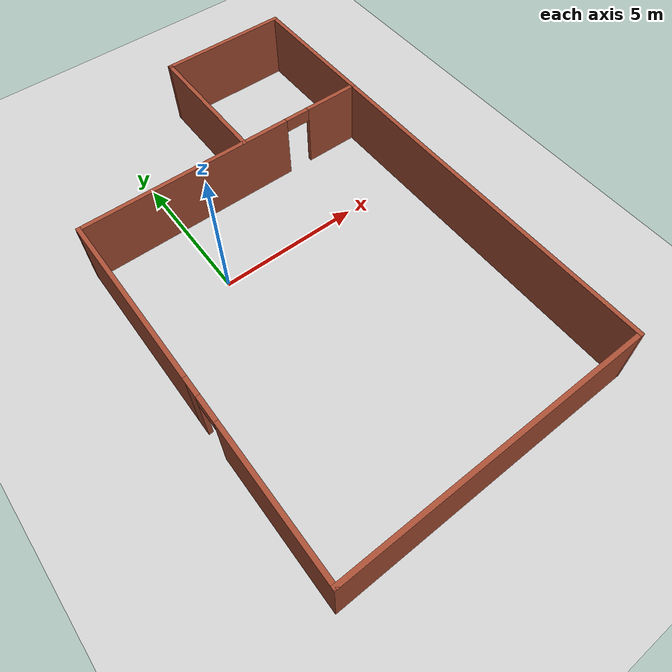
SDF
<sdf version="1.7">
 <world name="default">
  <model name="ground_plane">
   <static>1</static>
   <link name="link">
    <collision name="collision">
     <geometry><plane><normal>0 0 1</normal><size>100 100</size></plane></geometry>
     <surface><friction><ode><mu>100</mu><mu2>50</mu2></ode></friction></surface>
    </collision>
    <visual name="visual">
     <cast_shadows>0</cast_shadows>
     <geometry><plane><normal>0 0 1</normal><size>100 100</size></plane></geometry>
     <material>
      <script><uri>file://media/materials/scripts/gazebo.material</uri><name>Gazebo/Grey</name></script>
     </material>
    </visual>
   </link>
  </model>
  <light name="sun" type="directional">
   <pose>0 0 10 0 -0 0</pose>
   <diffuse>0.8 0.8 0.8 1</diffuse>
   <specular>0.2 0.2 0.2 1</specular>
   <attenuation>
    <range>1000</range>
    <constant>0.9</constant>
    <linear>0.01</linear>
    <quadratic>0.001</quadratic>
   </attenuation>
   <direction>-0.5 0.1 -0.9</direction>
   <spot><inner_angle>0</inner_angle><outer_angle>0</outer_angle><falloff>0</falloff></spot>
  </light>
  <scene><shadows>0</shadows><ambient>0.4 0.4 0.4 1</ambient><background>0.7 0.7 0.7 1</background></scene>
  <physics type="ode">
   <real_time_update_rate>1000</real_time_update_rate>
   <max_step_size>0.001</max_step_size>
   <real_time_factor>1</real_time_factor>
   <ode>
    <solver>
     <type>quick</type>
     <iters>150</iters>
     <precon_iters>0</precon_iters>
     <sor>1.4</sor>
     <use_dynamic_moi_rescaling>1</use_dynamic_moi_rescaling>
    </solver>
    <constraints>
     <cfm>1e-05</cfm>
     <erp>0.2</erp>
     <contact_max_correcting_vel>2000</contact_max_correcting_vel>
     <contact_surface_layer>0.01</contact_surface_layer>
    </constraints>
   </ode>
  </physics>
  <gravity>0 0 -9.8</gravity>
  <magnetic_field>6e-06 2.3e-05 -4.2e-05</magnetic_field>
  <atmosphere type="adiabatic"/>
  <audio><device>default</device></audio>
  <spherical_coordinates>
   <surface_model>EARTH_WGS84</surface_model>
   <latitude_deg>0</latitude_deg>
   <longitude_deg>0</longitude_deg>
   <elevation>0</elevation>
   <heading_deg>0</heading_deg>
  </spherical_coordinates>
  <model name="MurosV1">
   <pose>2.11817 -1.11001 0 0 -0 0</pose>
   <link name="Wall_16">
    <pose>-5.3 -5.6 0 0 -0 -1.5708</pose>
    <visual name="Wall_16_Visual_0">
     <pose>-2.98755 0 1.25 0 -0 0</pose>
     <geometry><box><size>0.674893 0.15 2.5</size></box></geometry>
     <material>
      <script><uri>file://media/materials/scripts/gazebo.material</uri><name>Gazebo/Bricks</name></script>
      <ambient>1 1 1 1</ambient>
     </material>
     <meta><layer>0</layer></meta>
    </visual>
    <collision name="Wall_16_Collision_0">
     <geometry><box><size>0.674893 0.15 2.5</size></box></geometry>
     <pose>-2.98755 0 1.25 0 -0 0</pose>
    </collision>
    <visual name="Wall_16_Visual_1">
     <pose>0.787446 0 1.25 0 -0 0</pose>
     <geometry><box><size>5.07511 0.15 2.5</size></box></geometry>
     <material>
      <script><uri>file://media/materials/scripts/gazebo.material</uri><name>Gazebo/Bricks</name></script>
      <ambient>1 1 1 1</ambient>
     </material>
     <meta><layer>0</layer></meta>
    </visual>
    <collision name="Wall_16_Collision_1">
     <geometry><box><size>5.07511 0.15 2.5</size></box></geometry>
     <pose>0.787446 0 1.25 0 -0 0</pose>
    </collision>
    <visual name="Wall_16_Visual_2">
     <pose>-2.20011 0 2.25 0 -0 0</pose>
     <geometry><box><size>0.9 0.15 0.5</size></box></geometry>
     <material>
      <script><uri>file://media/materials/scripts/gazebo.material</uri><name>Gazebo/Bricks</name></script>
      <ambient>1 1 1 1</ambient>
     </material>
     <meta><layer>0</layer></meta>
    </visual>
    <collision name="Wall_16_Collision_2">
     <geometry><box><size>0.9 0.15 0.5</size></box></geometry>
     <pose>-2.20011 0 2.25 0 -0 0</pose>
    </collision>
   </link>
   <link name="Wall_20">
    <collision name="Wall_20_Collision">
     <geometry><box><size>6.5 0.15 2.5</size></box></geometry>
     <pose>0 0 1.25 0 -0 0</pose>
    </collision>
    <visual name="Wall_20_Visual">
     <pose>0 0 1.25 0 -0 0</pose>
     <geometry><box><size>6.5 0.15 2.5</size></box></geometry>
     <material>
      <script><uri>file://media/materials/scripts/gazebo.material</uri><name>Gazebo/Bricks</name></script>
      <ambient>1 1 1 1</ambient>
     </material>
     <meta><layer>0</layer></meta>
    </visual>
    <pose>-5.3 0.825 0 0 -0 -1.5708</pose>
   </link>
   <link name="Wall_31">
    <collision name="Wall_31_Collision">
     <geometry><box><size>10.75 0.15 2.5</size></box></geometry>
     <pose>0 0 1.25 0 -0 0</pose>
    </collision>
    <visual name="Wall_31_Visual">
     <pose>0 0 1.25 0 -0 0</pose>
     <geometry><box><size>10.75 0.15 2.5</size></box></geometry>
     <material>
      <script><uri>file://media/materials/scripts/gazebo.material</uri><name>Gazebo/Bricks</name></script>
      <ambient>1 1 1 1</ambient>
     </material>
     <meta><layer>0</layer></meta>
    </visual>
    <pose>-0 -8.85 0 0 -0 0</pose>
   </link>
   <link name="Wall_32">
    <collision name="Wall_32_Collision">
     <geometry><box><size>13 0.15 2.5</size></box></geometry>
     <pose>0 0 1.25 0 -0 0</pose>
    </collision>
    <visual name="Wall_32_Visual">
     <pose>0 0 1.25 0 -0 0</pose>
     <geometry><box><size>13 0.15 2.5</size></box></geometry>
     <material>
      <script><uri>file://media/materials/scripts/gazebo.material</uri><name>Gazebo/Bricks</name></script>
      <ambient>1 1 1 1</ambient>
     </material>
     <meta><layer>0</layer></meta>
    </visual>
    <pose>5.3 -2.425 0 0 -0 1.5708</pose>
   </link>
   <link name="Wall_34">
    <pose>-0 4 0 0 -0 3.14159</pose>
    <visual name="Wall_34_Visual_0">
     <pose>-4.34065 0 1.25 0 -0 0</pose>
     <geometry><box><size>2.0687 0.15 2.5</size></box></geometry>
     <material>
      <script><uri>file://media/materials/scripts/gazebo.material</uri><name>Gazebo/Bricks</name></script>
      <ambient>1 1 1 1</ambient>
     </material>
     <meta><layer>0</layer></meta>
    </visual>
    <collision name="Wall_34_Collision_0">
     <geometry><box><size>2.0687 0.15 2.5</size></box></geometry>
     <pose>-4.34065 0 1.25 0 -0 0</pose>
    </collision>
    <visual name="Wall_34_Visual_1">
     <pose>1.48435 0 1.25 0 -0 0</pose>
     <geometry><box><size>7.7813 0.15 2.5</size></box></geometry>
     <material>
      <script><uri>file://media/materials/scripts/gazebo.material</uri><name>Gazebo/Bricks</name></script>
      <ambient>1 1 1 1</ambient>
     </material>
     <meta><layer>0</layer></meta>
    </visual>
    <collision name="Wall_34_Collision_1">
     <geometry><box><size>7.7813 0.15 2.5</size></box></geometry>
     <pose>1.48435 0 1.25 0 -0 0</pose>
    </collision>
    <visual name="Wall_34_Visual_2">
     <pose>-2.8563 0 2.25 0 -0 0</pose>
     <geometry><box><size>0.9 0.15 0.5</size></box></geometry>
     <material>
      <script><uri>file://media/materials/scripts/gazebo.material</uri><name>Gazebo/Bricks</name></script>
      <ambient>1 1 1 1</ambient>
     </material>
     <meta><layer>0</layer></meta>
    </visual>
    <collision name="Wall_34_Collision_2">
     <geometry><box><size>0.9 0.15 0.5</size></box></geometry>
     <pose>-2.8563 0 2.25 0 -0 0</pose>
    </collision>
   </link>
   <link name="Wall_36">
    <collision name="Wall_36_Collision">
     <geometry><box><size>5 0.15 2.5</size></box></geometry>
     <pose>0 0 1.25 0 -0 0</pose>
    </collision>
    <visual name="Wall_36_Visual">
     <pose>0 0 1.25 0 -0 0</pose>
     <geometry><box><size>5 0.15 2.5</size></box></geometry>
     <material>
      <script><uri>file://media/materials/scripts/gazebo.material</uri><name>Gazebo/Bricks</name></script>
      <ambient>1 1 1 1</ambient>
     </material>
     <meta><layer>0</layer></meta>
    </visual>
    <pose>5.3 6.425 0 0 -0 1.5708</pose>
   </link>
   <link name="Wall_37">
    <collision name="Wall_37_Collision">
     <geometry><box><size>4.75 0.15 2.5</size></box></geometry>
     <pose>0 0 1.25 0 -0 0</pose>
    </collision>
    <visual name="Wall_37_Visual">
     <pose>0 0 1.25 0 -0 0</pose>
     <geometry><box><size>4.75 0.15 2.5</size></box></geometry>
     <material>
      <script><uri>file://media/materials/scripts/gazebo.material</uri><name>Gazebo/Bricks</name></script>
      <ambient>1 1 1 1</ambient>
     </material>
     <meta><layer>0</layer></meta>
    </visual>
    <pose>3 8.85 0 0 -0 3.14159</pose>
   </link>
   <link name="Wall_38">
    <collision name="Wall_38_Collision">
     <geometry><box><size>5 0.15 2.5</size></box></geometry>
     <pose>0 0 1.25 0 -0 0</pose>
    </collision>
    <visual name="Wall_38_Visual">
     <pose>0 0 1.25 0 -0 0</pose>
     <geometry><box><size>5 0.15 2.5</size></box></geometry>
     <material>
      <script><uri>file://media/materials/scripts/gazebo.material</uri><name>Gazebo/Bricks</name></script>
      <ambient>1 1 1 1</ambient>
     </material>
     <meta><layer>0</layer></meta>
    </visual>
    <pose>0.7 6.425 0 0 -0 -1.5708</pose>
   </link>
   <static>1</static>
  </model>
 </world>
</sdf>
